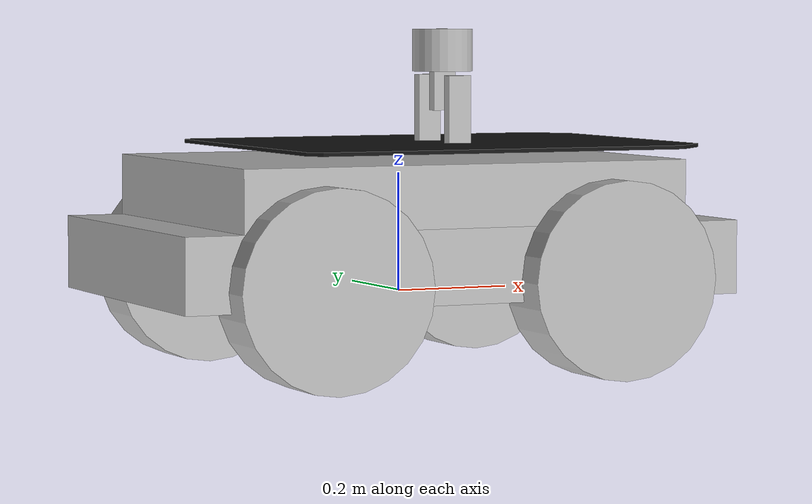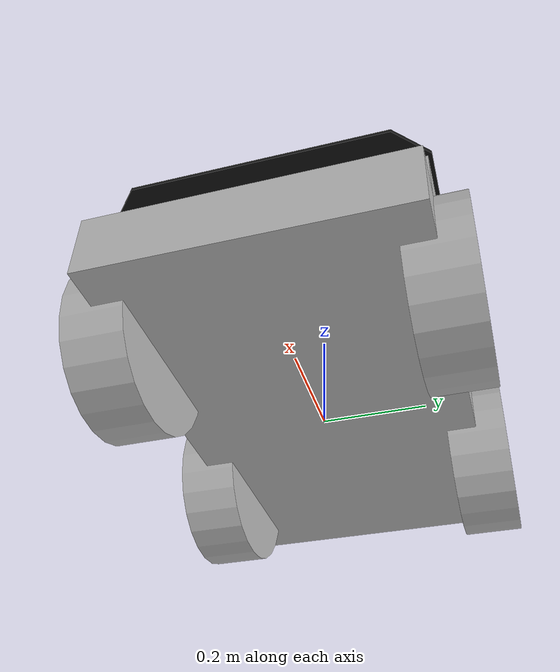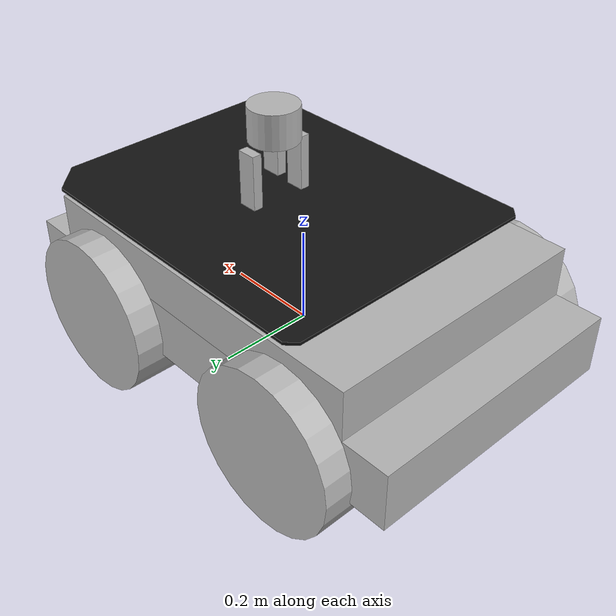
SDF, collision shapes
<sdf version='1.7'>
  <model name='husky'>
    <link name='base_link'>
      <inertial>
        <pose>0.000817 -0.083477 0.068186 0 -0 0</pose>
        <mass>46.874</mass>
        <inertia>
          <ixx>0.707356</ixx>
          <ixy>-0.0293794</ixy>
          <ixz>-0.143007</ixz>
          <iyy>1.84332</iyy>
          <iyz>-0.0257476</iyz>
          <izz>2.04219</izz>
        </inertia>
      </inertial>
      <collision name='base_link_collision'>
        <pose>0 0 0.061875 0 -0 0</pose>
        <geometry>
          <box>
            <size>0.9874 0.5709 0.12375</size>
          </box>
        </geometry>
      </collision>
      <collision name='base_link_collision_1'>
        <pose>0 0 0.175625 0 -0 0</pose>
        <geometry>
          <box>
            <size>0.78992 0.5709 0.10375</size>
          </box>
        </geometry>
      </collision>
      <collision name='base_link_fixed_joint_lump__top_plate_link_collision_2'>
        <pose>0.0812 0 0.245 0 -0 0</pose>
        <geometry>
          <mesh>
            <scale>1 1 1</scale>
            <uri>model://husky_description/meshes/top_plate.stl</uri>
          </mesh>
        </geometry>
      </collision>
      <collision name='base_link_fixed_joint_lump__vlp16_mount_left_support_collision_3'>
        <pose>0.0812 0.06 0.305 0 -0 0</pose>
        <geometry>
          <box>
            <size>0.04 0.02 0.12</size>
          </box>
        </geometry>
      </collision>
      <collision name='base_link_fixed_joint_lump__vlp16_mount_plate_collision_4'>
        <pose>0.0812 0 0.365 0 -0 0</pose>
        <geometry>
          <box>
            <size>0.04 0.02 0.12</size>
          </box>
        </geometry>
      </collision>
      <collision name='base_link_fixed_joint_lump__velodyne_base_link_collision_5'>
        <pose>0.0812 0 0.40715 0 -0 0</pose>
        <geometry>
          <cylinder>
            <length>0.0717</length>
            <radius>0.0516</radius>
          </cylinder>
        </geometry>
      </collision>
      <collision name='base_link_fixed_joint_lump__velodyne_collision_6'>
        <pose>0.0812 0 0.409 0 -0 0</pose>
        <geometry>
          <sphere>
            <radius>0</radius>
          </sphere>
        </geometry>
        <surface>
          <contact>
            <ode/>
          </contact>
          <friction>
            <ode/>
          </friction>
        </surface>
      </collision>
      <collision name='base_link_fixed_joint_lump__vlp16_mount_right_support_collision_7'>
        <pose>0.0812 -0.06 0.305 0 -0 0</pose>
        <geometry>
          <box>
            <size>0.04 0.02 0.12</size>
          </box>
        </geometry>
      </collision>
      <visual name='base_link_visual'>
        <pose>0 0 0 0 -0 0</pose>
        <geometry>
          <mesh>
            <scale>1 1 1</scale>
            <uri>model://husky_description/meshes/base_link.dae</uri>
          </mesh>
        </geometry>
      </visual>
      <visual name='base_link_fixed_joint_lump__front_bumper_link_visual_1'>
        <pose>0.48 0 0.091 0 -0 0</pose>
        <geometry>
          <mesh>
            <scale>1 1 1</scale>
            <uri>model://husky_description/meshes/bumper.dae</uri>
          </mesh>
        </geometry>
      </visual>
      <visual name='base_link_fixed_joint_lump__rear_bumper_link_visual_2'>
        <pose>-0.48 0 0.091 0 -0 3.14159</pose>
        <geometry>
          <mesh>
            <scale>1 1 1</scale>
            <uri>model://husky_description/meshes/bumper.dae</uri>
          </mesh>
        </geometry>
      </visual>
      <visual name='base_link_fixed_joint_lump__top_chassis_link_visual_3'>
        <pose>0 0 0 0 -0 0</pose>
        <geometry>
          <mesh>
            <scale>1 1 1</scale>
            <uri>model://husky_description/meshes/top_chassis.dae</uri>
          </mesh>
        </geometry>
      </visual>
      <visual name='base_link_fixed_joint_lump__top_plate_link_visual_4'>
        <pose>0.0812 0 0.245 0 -0 0</pose>
        <geometry>
          <mesh>
            <scale>1 1 1</scale>
            <uri>model://husky_description/meshes/top_plate.dae</uri>
          </mesh>
        </geometry>
      </visual>
      <visual name='base_link_fixed_joint_lump__vlp16_mount_left_support_visual_5'>
        <pose>0.0812 0.06 0.305 0 -0 0</pose>
        <geometry>
          <box>
            <size>0.04 0.02 0.12</size>
          </box>
        </geometry>
      </visual>
      <visual name='base_link_fixed_joint_lump__vlp16_mount_plate_visual_6'>
        <pose>0.0812 0 0.36815 0 -0 0</pose>
        <geometry>
          <box>
            <size>0.04 0.141 0.0063</size>
          </box>
        </geometry>
      </visual>
      <visual name='base_link_fixed_joint_lump__velodyne_base_link_visual_7'>
        <pose>0.0812 0 0.3713 0 -0 0</pose>
        <geometry>
          <mesh>
            <scale>1 1 1</scale>
            <uri>model://velodyne_description/meshes/VLP16_base_1.dae</uri>
          </mesh>
        </geometry>
      </visual>
      <visual name='base_link_fixed_joint_lump__velodyne_base_link_visual_8'>
        <pose>0.0812 0 0.3713 0 -0 0</pose>
        <geometry>
          <mesh>
            <scale>1 1 1</scale>
            <uri>model://velodyne_description/meshes/VLP16_base_2.dae</uri>
          </mesh>
        </geometry>
      </visual>
      <visual name='base_link_fixed_joint_lump__velodyne_visual_9'>
        <pose>0.0812 0 0.3713 0 -0 0</pose>
        <geometry>
          <mesh>
            <scale>1 1 1</scale>
            <uri>model://velodyne_description/meshes/VLP16_scan.dae</uri>
          </mesh>
        </geometry>
      </visual>
      <visual name='base_link_fixed_joint_lump__vlp16_mount_right_support_visual_10'>
        <pose>0.0812 -0.06 0.305 0 -0 0</pose>
        <geometry>
          <box>
            <size>0.04 0.02 0.12</size>
          </box>
        </geometry>
      </visual>
      <visual name='base_link_fixed_joint_lump__user_rail_link_visual_11'>
        <pose>0.272 0 0.245 0 -0 0</pose>
        <geometry>
          <mesh>
            <scale>1 1 1</scale>
            <uri>model://husky_description/meshes/user_rail.dae</uri>
          </mesh>
        </geometry>
      </visual>
      <sensor name='velodyne-VLP16' type='ray'>
        <visualize>0</visualize>
        <update_rate>10</update_rate>
        <ray>
          <scan>
            <horizontal>
              <samples>1875</samples>
              <resolution>1</resolution>
              <min_angle>-3.14159</min_angle>
              <max_angle>3.14159</max_angle>
            </horizontal>
            <vertical>
              <samples>16</samples>
              <resolution>1</resolution>
              <min_angle>-0.261799</min_angle>
              <max_angle>0.261799</max_angle>
            </vertical>
          </scan>
          <range>
            <min>0.3</min>
            <max>131</max>
            <resolution>0.001</resolution>
          </range>
          <noise>
            <type>gaussian</type>
            <mean>0</mean>
            <stddev>0</stddev>
          </noise>
        </ray>
        <plugin name='gazebo_ros_laser_controller' filename='libgazebo_ros_velodyne_laser.so'>
          <topicName>points</topicName>
          <frameName>velodyne</frameName>
          <organize_cloud>0</organize_cloud>
          <min_range>0.9</min_range>
          <max_range>130.0</max_range>
          <gaussianNoise>0.008</gaussianNoise>
        </plugin>
        <pose>0.0812 0 0.409 0 -0 0</pose>
      </sensor>
    </link>
    <joint name='front_left_wheel' type='revolute'>
      <pose relative_to='base_link'>0.256 0.2854 0.03282 0 -0 0</pose>
      <parent>base_link</parent>
      <child>front_left_wheel_link</child>
      <axis>
        <xyz>0 1 0</xyz>
        <limit>
          <lower>-1e+16</lower>
          <upper>1e+16</upper>
        </limit>
        <dynamics>
          <spring_reference>0</spring_reference>
          <spring_stiffness>0</spring_stiffness>
        </dynamics>
      </axis>
    </joint>
    <link name='front_left_wheel_link'>
      <pose relative_to='front_left_wheel'>0 0 0 0 -0 0</pose>
      <inertial>
        <pose>0 0 0 0 -0 0</pose>
        <mass>2.637</mass>
        <inertia>
          <ixx>0.02467</ixx>
          <ixy>0</ixy>
          <ixz>0</ixz>
          <iyy>0.04411</iyy>
          <iyz>0</iyz>
          <izz>0.02467</izz>
        </inertia>
      </inertial>
      <collision name='front_left_wheel_link_collision'>
        <pose>0 0 0 1.57079 -0 0</pose>
        <geometry>
          <cylinder>
            <length>0.1143</length>
            <radius>0.1651</radius>
          </cylinder>
        </geometry>
        <surface>
          <contact>
            <ode>
              <kp>1e+07</kp>
              <kd>1</kd>
            </ode>
          </contact>
          <friction>
            <ode>
              <mu>1</mu>
              <mu2>1</mu2>
              <fdir1>1 0 0</fdir1>
            </ode>
          </friction>
        </surface>
      </collision>
      <visual name='front_left_wheel_link_visual'>
        <pose>0 0 0 0 -0 0</pose>
        <geometry>
          <mesh>
            <scale>1 1 1</scale>
            <uri>model://husky_description/meshes/wheel.dae</uri>
          </mesh>
        </geometry>
      </visual>
    </link>
    <joint name='front_right_wheel' type='revolute'>
      <pose relative_to='base_link'>0.256 -0.2854 0.03282 0 -0 0</pose>
      <parent>base_link</parent>
      <child>front_right_wheel_link</child>
      <axis>
        <xyz>0 1 0</xyz>
        <limit>
          <lower>-1e+16</lower>
          <upper>1e+16</upper>
        </limit>
        <dynamics>
          <spring_reference>0</spring_reference>
          <spring_stiffness>0</spring_stiffness>
        </dynamics>
      </axis>
    </joint>
    <link name='front_right_wheel_link'>
      <pose relative_to='front_right_wheel'>0 0 0 0 -0 0</pose>
      <inertial>
        <pose>0 0 0 0 -0 0</pose>
        <mass>2.637</mass>
        <inertia>
          <ixx>0.02467</ixx>
          <ixy>0</ixy>
          <ixz>0</ixz>
          <iyy>0.04411</iyy>
          <iyz>0</iyz>
          <izz>0.02467</izz>
        </inertia>
      </inertial>
      <collision name='front_right_wheel_link_collision'>
        <pose>0 0 0 1.57079 -0 0</pose>
        <geometry>
          <cylinder>
            <length>0.1143</length>
            <radius>0.1651</radius>
          </cylinder>
        </geometry>
        <surface>
          <contact>
            <ode>
              <kp>1e+07</kp>
              <kd>1</kd>
            </ode>
          </contact>
          <friction>
            <ode>
              <mu>1</mu>
              <mu2>1</mu2>
              <fdir1>1 0 0</fdir1>
            </ode>
          </friction>
        </surface>
      </collision>
      <visual name='front_right_wheel_link_visual'>
        <pose>0 0 0 0 -0 0</pose>
        <geometry>
          <mesh>
            <scale>1 1 1</scale>
            <uri>model://husky_description/meshes/wheel.dae</uri>
          </mesh>
        </geometry>
      </visual>
    </link>
    <joint name='rear_left_wheel' type='revolute'>
      <pose relative_to='base_link'>-0.256 0.2854 0.03282 0 -0 0</pose>
      <parent>base_link</parent>
      <child>rear_left_wheel_link</child>
      <axis>
        <xyz>0 1 0</xyz>
        <limit>
          <lower>-1e+16</lower>
          <upper>1e+16</upper>
        </limit>
        <dynamics>
          <spring_reference>0</spring_reference>
          <spring_stiffness>0</spring_stiffness>
        </dynamics>
      </axis>
    </joint>
    <link name='rear_left_wheel_link'>
      <pose relative_to='rear_left_wheel'>0 0 0 0 -0 0</pose>
      <inertial>
        <pose>0 0 0 0 -0 0</pose>
        <mass>2.637</mass>
        <inertia>
          <ixx>0.02467</ixx>
          <ixy>0</ixy>
          <ixz>0</ixz>
          <iyy>0.04411</iyy>
          <iyz>0</iyz>
          <izz>0.02467</izz>
        </inertia>
      </inertial>
      <collision name='rear_left_wheel_link_collision'>
        <pose>0 0 0 1.57079 -0 0</pose>
        <geometry>
          <cylinder>
            <length>0.1143</length>
            <radius>0.1651</radius>
          </cylinder>
        </geometry>
        <surface>
          <contact>
            <ode>
              <kp>1e+07</kp>
              <kd>1</kd>
            </ode>
          </contact>
          <friction>
            <ode>
              <mu>1</mu>
              <mu2>1</mu2>
              <fdir1>1 0 0</fdir1>
            </ode>
          </friction>
        </surface>
      </collision>
      <visual name='rear_left_wheel_link_visual'>
        <pose>0 0 0 0 -0 0</pose>
        <geometry>
          <mesh>
            <scale>1 1 1</scale>
            <uri>model://husky_description/meshes/wheel.dae</uri>
          </mesh>
        </geometry>
      </visual>
    </link>
    <joint name='rear_right_wheel' type='revolute'>
      <pose relative_to='base_link'>-0.256 -0.2854 0.03282 0 -0 0</pose>
      <parent>base_link</parent>
      <child>rear_right_wheel_link</child>
      <axis>
        <xyz>0 1 0</xyz>
        <limit>
          <lower>-1e+16</lower>
          <upper>1e+16</upper>
        </limit>
        <dynamics>
          <spring_reference>0</spring_reference>
          <spring_stiffness>0</spring_stiffness>
        </dynamics>
      </axis>
    </joint>
    <link name='rear_right_wheel_link'>
      <pose relative_to='rear_right_wheel'>0 0 0 0 -0 0</pose>
      <inertial>
        <pose>0 0 0 0 -0 0</pose>
        <mass>2.637</mass>
        <inertia>
          <ixx>0.02467</ixx>
          <ixy>0</ixy>
          <ixz>0</ixz>
          <iyy>0.04411</iyy>
          <iyz>0</iyz>
          <izz>0.02467</izz>
        </inertia>
      </inertial>
      <collision name='rear_right_wheel_link_collision'>
        <pose>0 0 0 1.57079 -0 0</pose>
        <geometry>
          <cylinder>
            <length>0.1143</length>
            <radius>0.1651</radius>
          </cylinder>
        </geometry>
        <surface>
          <contact>
            <ode>
              <kp>1e+07</kp>
              <kd>1</kd>
            </ode>
          </contact>
          <friction>
            <ode>
              <mu>1</mu>
              <mu2>1</mu2>
              <fdir1>1 0 0</fdir1>
            </ode>
          </friction>
        </surface>
      </collision>
      <visual name='rear_right_wheel_link_visual'>
        <pose>0 0 0 0 -0 0</pose>
        <geometry>
          <mesh>
            <scale>1 1 1</scale>
            <uri>model://husky_description/meshes/wheel.dae</uri>
          </mesh>
        </geometry>
      </visual>
    </link>
    <plugin name='gazebo_ros_control' filename='libgazebo_ros_control.so'>
      <robotNamespace>/</robotNamespace>
      <legacyModeNS>1</legacyModeNS>
    </plugin>
    <plugin name='imu_controller' filename='libhector_gazebo_ros_imu.so'>
      <robotNamespace>/</robotNamespace>
      <updateRate>100.0</updateRate>
      <bodyName>base_link</bodyName>
      <topicName>imu/data</topicName>
      <accelDrift>0.005 0.005 0.005</accelDrift>
      <accelGaussianNoise>0.005 0.005 0.005</accelGaussianNoise>
      <rateDrift>0.005 0.005 0.005</rateDrift>
      <rateGaussianNoise>0.005 0.005 0.005</rateGaussianNoise>
      <headingDrift>0.005</headingDrift>
      <headingGaussianNoise>0.005</headingGaussianNoise>
    </plugin>
    <plugin name='gps_controller' filename='libhector_gazebo_ros_gps.so'>
      <robotNamespace>/</robotNamespace>
      <updateRate>40</updateRate>
      <bodyName>base_link</bodyName>
      <frameId>base_link</frameId>
      <topicName>navsat/fix</topicName>
      <velocityTopicName>navsat/vel</velocityTopicName>
      <referenceLatitude>49.9</referenceLatitude>
      <referenceLongitude>8.9</referenceLongitude>
      <referenceHeading>90</referenceHeading>
      <referenceAltitude>0</referenceAltitude>
      <drift>0.0001 0.0001 0.0001</drift>
    </plugin>
    <static>0</static>
    <plugin name='ground_truth_odom' filename='libgazebo_ros_p3d.so'>
      <updateRate>50.0</updateRate>
      <bodyName>base_link</bodyName>
      <topicName>/gazebo/odom</topicName>
      <gaussianNoise>0.0</gaussianNoise>
      <frameName>map</frameName>
    </plugin>
  </model>
</sdf>
